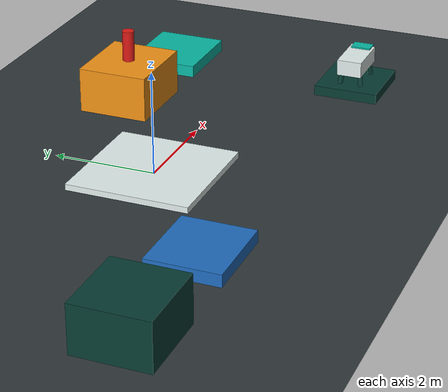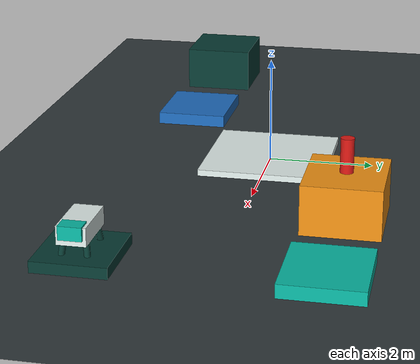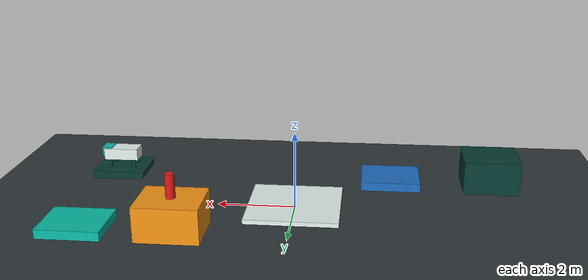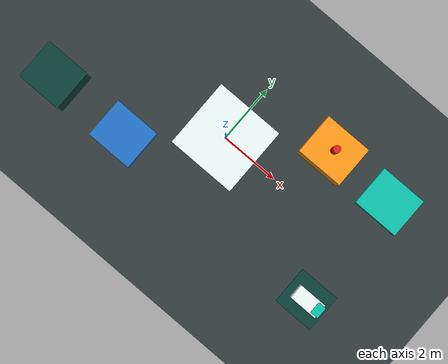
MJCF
<mujoco model="generic_openquad_raas_validation_cell">
  <compiler angle="degree"/>
  <option timestep="0.01" gravity="0 0 -9.81"/>
  <statistic center="0 0 0.8" extent="9"/>
  <visual><global offwidth="960" offheight="540"/><headlight ambient="0.45 0.45 0.45" diffuse="0.78 0.78 0.78"/></visual>
  <default><geom contype="0" conaffinity="0"/></default>
  <asset>
    <texture name="floor_tex" type="2d" builtin="checker" rgb1="0.15 0.18 0.19" rgb2="0.22 0.25 0.26" width="256" height="256"/>
    <material name="floor" texture="floor_tex" texrepeat="9 6"/>
    <material name="navy" rgba="0.03 0.23 0.20 1"/>
    <material name="teal" rgba="0.03 0.72 0.64 1"/>
    <material name="blue" rgba="0.12 0.42 0.74 1"/>
    <material name="white" rgba="0.88 0.93 0.92 1"/>
    <material name="amber" rgba="0.94 0.57 0.08 1"/>
    <material name="red" rgba="0.86 0.10 0.08 1"/>
  </asset>
  <worldbody>
    <light pos="-3 -3 8" dir="0.2 0.1 -1" diffuse="0.9 0.9 0.9"/>
    <geom name="floor" type="plane" size="9 6 0.1" material="floor" contype="1" conaffinity="1"/>
    <camera name="overview" pos="-10 -11 7.8" xyaxes="0.73 -0.68 0 0.36 0.39 0.85"/>
    <camera name="test_lane" pos="0 -9 3.7" xyaxes="1 0 0 0 0.91 0.42"/>

    <geom type="box" pos="-5.2 -2.0 0.45" size="0.75 0.7 0.45" material="navy"/>
    <geom type="box" pos="-2.5 -2.0 0.12" size="0.8 0.7 0.12" material="blue"/>
    <geom type="box" pos="0 0 0.06" size="1.2 1.2 0.06" material="white"/>
    <geom type="box" pos="2.8 1.8 0.45" size="0.8 0.7 0.45" material="amber"/>
    <geom type="box" pos="5.2 1.8 0.12" size="0.8 0.7 0.12" material="teal"/>
    <geom type="box" pos="5.2 -2.2 0.10" size="0.7 0.65 0.10" material="navy"/>
    <geom name="fault_beacon" type="cylinder" pos="2.8 1.8 1.2" size="0.12 0.32" material="red"/>

    <body name="build_unit" mocap="true" pos="-5.2 -2.0 0">
      <geom type="box" pos="0 0 0.58" size="0.48 0.25 0.16" material="blue"/>
      <geom type="box" pos="0.40 0 0.65" size="0.14 0.20 0.12" material="teal"/>
      <geom type="capsule" fromto="-0.30 -0.18 0.50 -0.38 -0.23 0.08" size="0.055" material="white"/>
      <geom type="capsule" fromto="-0.30 0.18 0.50 -0.38 0.23 0.08" size="0.055" material="white"/>
      <geom type="capsule" fromto="0.28 -0.18 0.50 0.36 -0.23 0.08" size="0.055" material="white"/>
      <geom type="capsule" fromto="0.28 0.18 0.50 0.36 0.23 0.08" size="0.055" material="white"/>
    </body>
    <body name="test_unit" mocap="true" pos="-5.2 -2.0 0">
      <geom type="box" pos="0 0 0.58" size="0.48 0.25 0.16" material="teal"/>
      <geom type="box" pos="0.40 0 0.65" size="0.14 0.20 0.12" material="navy"/>
      <geom type="capsule" fromto="-0.30 -0.18 0.50 -0.38 -0.23 0.08" size="0.055" material="white"/>
      <geom type="capsule" fromto="-0.30 0.18 0.50 -0.38 0.23 0.08" size="0.055" material="white"/>
      <geom type="capsule" fromto="0.28 -0.18 0.50 0.36 -0.23 0.08" size="0.055" material="white"/>
      <geom type="capsule" fromto="0.28 0.18 0.50 0.36 0.23 0.08" size="0.055" material="white"/>
    </body>
    <body name="swap_unit" mocap="true" pos="5.2 -2.2 0">
      <geom type="box" pos="0 0 0.58" size="0.48 0.25 0.16" material="white"/>
      <geom type="box" pos="0.40 0 0.65" size="0.14 0.20 0.12" material="teal"/>
      <geom type="capsule" fromto="-0.30 -0.18 0.50 -0.38 -0.23 0.08" size="0.055" material="navy"/>
      <geom type="capsule" fromto="-0.30 0.18 0.50 -0.38 0.23 0.08" size="0.055" material="navy"/>
      <geom type="capsule" fromto="0.28 -0.18 0.50 0.36 -0.23 0.08" size="0.055" material="navy"/>
      <geom type="capsule" fromto="0.28 0.18 0.50 0.36 0.23 0.08" size="0.055" material="navy"/>
    </body>
  </worldbody>
</mujoco>
